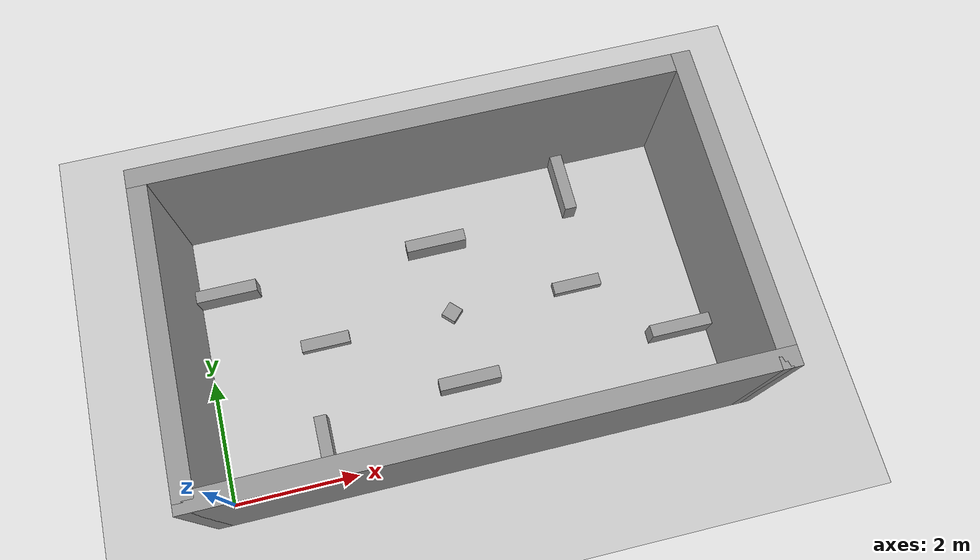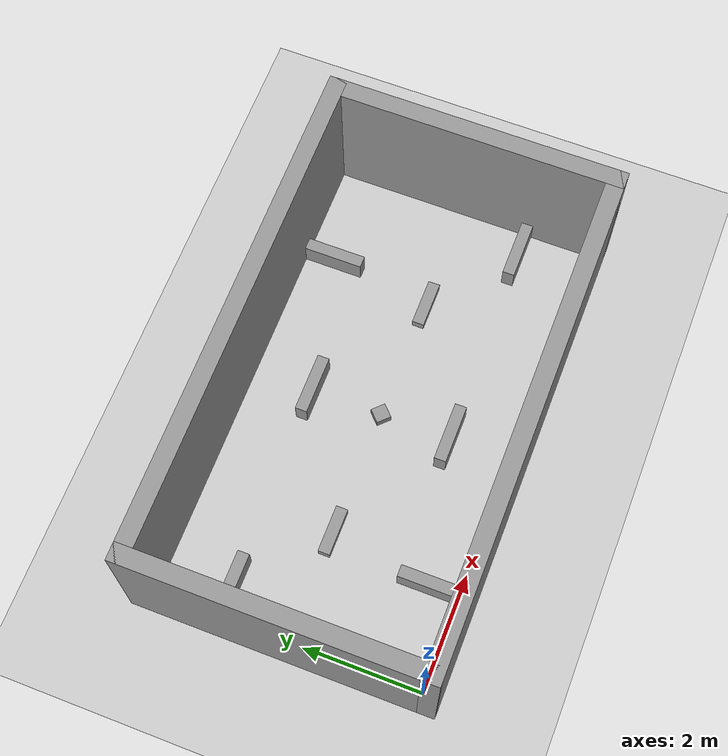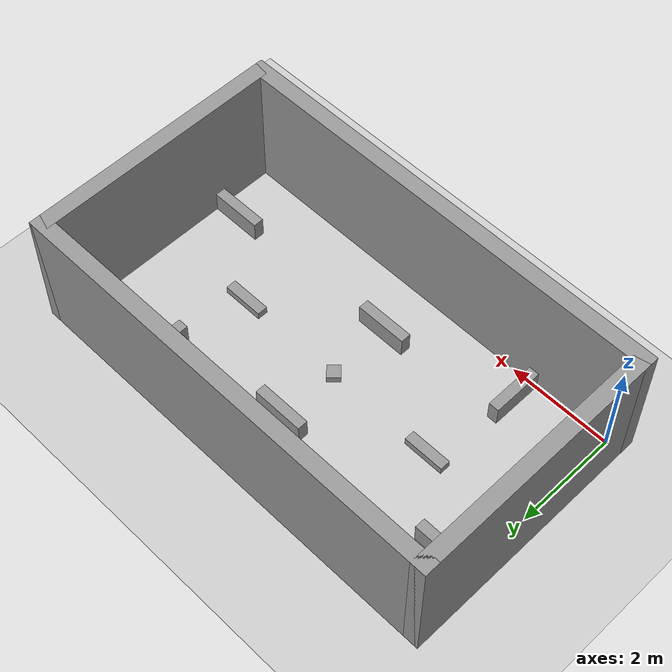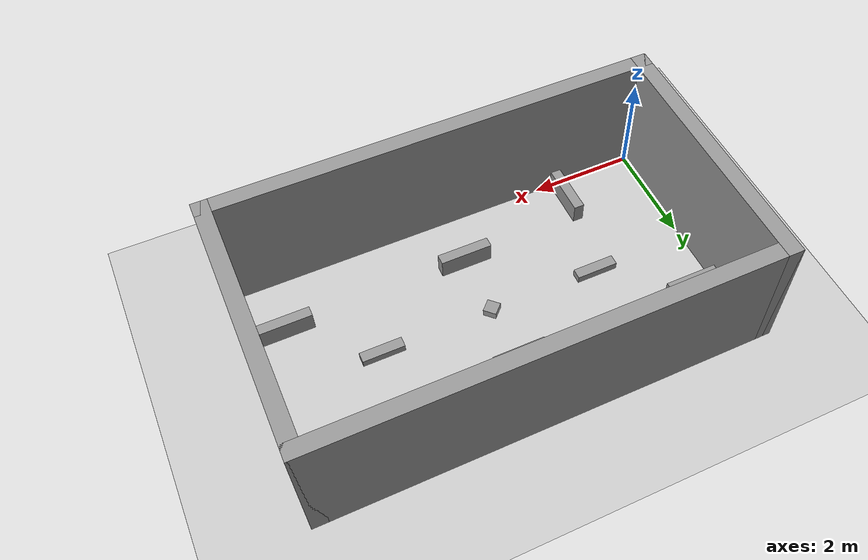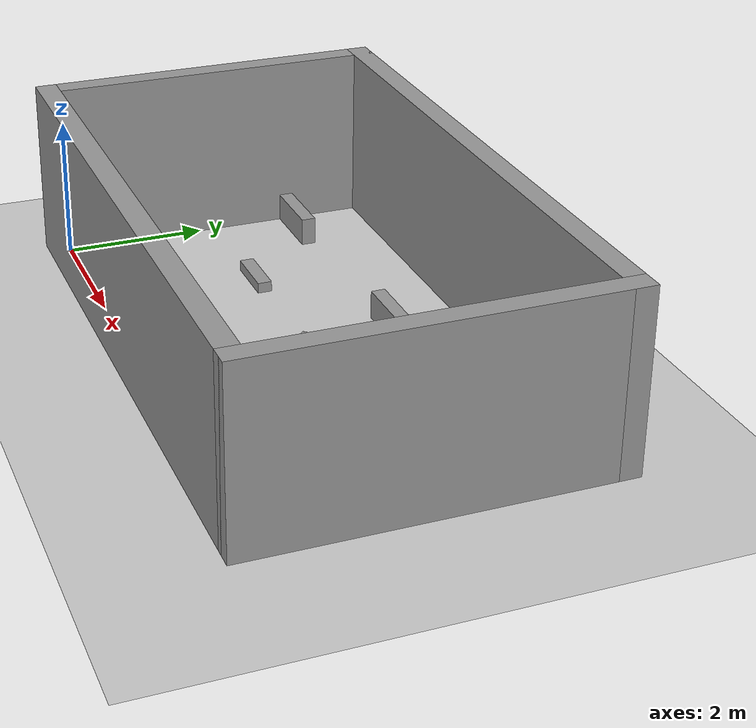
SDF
<sdf version="1.6">
 <world name="default">
  <light name="sun" type="directional">
   <pose>0 0 10 0 -0 0</pose>
   <diffuse>0.8 0.8 0.8 1</diffuse>
   <specular>0.2 0.2 0.2 1</specular>
   <attenuation>
    <range>1000</range>
    <constant>0.9</constant>
    <linear>0.01</linear>
    <quadratic>0.001</quadratic>
   </attenuation>
   <direction>-0.5 0.1 -0.9</direction>
  </light>
  <model name="ground_plane">
   <static>1</static>
   <link name="link">
    <collision name="collision">
     <geometry><plane><normal>0 0 1</normal><size>100 100</size></plane></geometry>
     <surface>
      <contact><collide_bitmask>65535</collide_bitmask></contact>
      <friction><ode><mu>100</mu><mu2>50</mu2></ode></friction>
     </surface>
    </collision>
    <visual name="visual">
     <cast_shadows>0</cast_shadows>
     <geometry><plane><normal>0 0 1</normal><size>100 100</size></plane></geometry>
     <material>
      <script><uri>file://media/materials/scripts/gazebo.material</uri><name>Gazebo/Grey</name></script>
     </material>
    </visual>
   </link>
  </model>
  <gravity>0 0 -9.8</gravity>
  <magnetic_field>6e-06 2.3e-05 -4.2e-05</magnetic_field>
  <atmosphere type="adiabatic"/>
  <physics name="default_physics" default="0" type="ode">
   <max_step_size>0.001</max_step_size>
   <real_time_factor>1</real_time_factor>
   <real_time_update_rate>1000</real_time_update_rate>
  </physics>
  <scene><ambient>0.4 0.4 0.4 1</ambient><background>0.7 0.7 0.7 1</background><shadows>1</shadows></scene>
  <audio><device>default</device></audio>
  <spherical_coordinates>
   <surface_model>EARTH_WGS84</surface_model>
   <latitude_deg>0</latitude_deg>
   <longitude_deg>0</longitude_deg>
   <elevation>0</elevation>
   <heading_deg>0</heading_deg>
  </spherical_coordinates>
  <model name="robotmaster2022">
   <pose>4.04 2.24 0 0 -0 0</pose>
   <link name="Wall_0">
    <collision name="Wall_0_Collision">
     <geometry><box><size>8.68 0.3 2.5</size></box></geometry>
     <pose>0 0 1.25 0 -0 0</pose>
    </collision>
    <visual name="Wall_0_Visual">
     <pose>0 0 1.25 0 -0 0</pose>
     <geometry><box><size>8.68 0.3 2.5</size></box></geometry>
     <material>
      <script><uri>file://media/materials/scripts/gazebo.material</uri><name>Gazebo/Grey</name></script>
      <ambient>1 1 1 1</ambient>
     </material>
     <meta><layer>0</layer></meta>
    </visual>
    <pose>0 -2.39 0 0 -0 0</pose>
   </link>
   <link name="Wall_10">
    <collision name="Wall_10_Collision">
     <geometry><box><size>1 0.2 0.4</size></box></geometry>
     <pose>0 0 0.2 0 -0 0</pose>
    </collision>
    <visual name="Wall_10_Visual">
     <pose>0 0 0.2 0 -0 0</pose>
     <geometry><box><size>1 0.2 0.4</size></box></geometry>
     <material>
      <script><uri>file://media/materials/scripts/gazebo.material</uri><name>Gazebo/Grey</name></script>
      <ambient>1 1 1 1</ambient>
     </material>
     <meta><layer>0</layer></meta>
    </visual>
    <pose>-2.44 -1.74 0 0 -0 1.5708</pose>
   </link>
   <link name="Wall_12">
    <collision name="Wall_12_Collision">
     <geometry><box><size>1 0.2 0.4</size></box></geometry>
     <pose>0 0 0.2 0 -0 0</pose>
    </collision>
    <visual name="Wall_12_Visual">
     <pose>0 0 0.2 0 -0 0</pose>
     <geometry><box><size>1 0.2 0.4</size></box></geometry>
     <material>
      <script><uri>file://media/materials/scripts/gazebo.material</uri><name>Gazebo/Grey</name></script>
      <ambient>1 1 1 1</ambient>
     </material>
     <meta><layer>0</layer></meta>
    </visual>
    <pose>-3.54 1.14 0 0 -0 0</pose>
   </link>
   <link name="Wall_2">
    <collision name="Wall_2_Collision">
     <geometry><box><size>5.08 0.3 2.5</size></box></geometry>
     <pose>0 0 1.25 0 -0 0</pose>
    </collision>
    <visual name="Wall_2_Visual">
     <pose>0 0 1.25 0 -0 0</pose>
     <geometry><box><size>5.08 0.3 2.5</size></box></geometry>
     <material>
      <script><uri>file://media/materials/scripts/gazebo.material</uri><name>Gazebo/Grey</name></script>
      <ambient>1 1 1 1</ambient>
     </material>
     <meta><layer>0</layer></meta>
    </visual>
    <pose>-4.19 0 0 0 -0 1.5708</pose>
   </link>
   <link name="Wall_21">
    <collision name="Wall_21_Collision">
     <geometry><box><size>1 0.2 0.4</size></box></geometry>
     <pose>0 0 0.2 0 -0 0</pose>
    </collision>
    <visual name="Wall_21_Visual">
     <pose>0 0 0.2 0 -0 0</pose>
     <geometry><box><size>1 0.2 0.4</size></box></geometry>
     <material>
      <script><uri>file://media/materials/scripts/gazebo.material</uri><name>Gazebo/Grey</name></script>
      <ambient>1 1 1 1</ambient>
     </material>
     <meta><layer>0</layer></meta>
    </visual>
    <pose>2.36 1.74 0 0 -0 1.5708</pose>
   </link>
   <link name="Wall_23">
    <collision name="Wall_23_Collision">
     <geometry><box><size>1 0.2 0.4</size></box></geometry>
     <pose>0 0 0.2 0 -0 0</pose>
    </collision>
    <visual name="Wall_23_Visual">
     <pose>0 0 0.2 0 -0 0</pose>
     <geometry><box><size>1 0.2 0.4</size></box></geometry>
     <material>
      <script><uri>file://media/materials/scripts/gazebo.material</uri><name>Gazebo/Grey</name></script>
      <ambient>1 1 1 1</ambient>
     </material>
     <meta><layer>0</layer></meta>
    </visual>
    <pose>3.54 -1.14 0 0 -0 0</pose>
   </link>
   <link name="Wall_25">
    <collision name="Wall_25_Collision">
     <geometry><box><size>0.8 0.2 0.15</size></box></geometry>
     <pose>0 0 0.075 0 -0 0</pose>
    </collision>
    <visual name="Wall_25_Visual">
     <pose>0 0 0.075 0 -0 0</pose>
     <geometry><box><size>0.8 0.2 0.15</size></box></geometry>
     <material>
      <script><uri>file://media/materials/scripts/gazebo.material</uri><name>Gazebo/Grey</name></script>
      <ambient>1 1 1 1</ambient>
     </material>
     <meta><layer>0</layer></meta>
    </visual>
    <pose>-2.14 0 0 0 -0 0</pose>
   </link>
   <link name="Wall_27">
    <collision name="Wall_27_Collision">
     <geometry><box><size>0.8 0.2 0.15</size></box></geometry>
     <pose>0 0 0.075 0 -0 0</pose>
    </collision>
    <visual name="Wall_27_Visual">
     <pose>0 0 0.075 0 -0 0</pose>
     <geometry><box><size>0.8 0.2 0.15</size></box></geometry>
     <material>
      <script><uri>file://media/materials/scripts/gazebo.material</uri><name>Gazebo/Grey</name></script>
      <ambient>1 1 1 1</ambient>
     </material>
     <meta><layer>0</layer></meta>
    </visual>
    <pose>2.14 0 0 0 -0 0</pose>
   </link>
   <link name="Wall_29">
    <collision name="Wall_29_Collision">
     <geometry><box><size>1 0.2 0.4</size></box></geometry>
     <pose>0 0 0.2 0 -0 0</pose>
    </collision>
    <visual name="Wall_29_Visual">
     <pose>0 0 0.2 0 -0 0</pose>
     <geometry><box><size>1 0.2 0.4</size></box></geometry>
     <material>
      <script><uri>file://media/materials/scripts/gazebo.material</uri><name>Gazebo/Grey</name></script>
      <ambient>1 1 1 1</ambient>
     </material>
     <meta><layer>0</layer></meta>
    </visual>
    <pose>0 1.205 0 0 -0 0</pose>
   </link>
   <link name="Wall_31">
    <collision name="Wall_31_Collision">
     <geometry><box><size>1 0.2 0.4</size></box></geometry>
     <pose>0 0 0.2 0 -0 0</pose>
    </collision>
    <visual name="Wall_31_Visual">
     <pose>0 0 0.2 0 -0 0</pose>
     <geometry><box><size>1 0.2 0.4</size></box></geometry>
     <material>
      <script><uri>file://media/materials/scripts/gazebo.material</uri><name>Gazebo/Grey</name></script>
      <ambient>1 1 1 1</ambient>
     </material>
     <meta><layer>0</layer></meta>
    </visual>
    <pose>0 -1.205 0 0 -0 0</pose>
   </link>
   <link name="Wall_33">
    <collision name="Wall_33_Collision">
     <geometry><box><size>0.251414 0.25 0.15</size></box></geometry>
     <pose>0 0 0.075 0 -0 0</pose>
    </collision>
    <visual name="Wall_33_Visual">
     <pose>0 0 0.075 0 -0 0</pose>
     <geometry><box><size>0.251414 0.25 0.15</size></box></geometry>
     <material>
      <script><uri>file://media/materials/scripts/gazebo.material</uri><name>Gazebo/Grey</name></script>
      <ambient>1 1 1 1</ambient>
     </material>
     <meta><layer>0</layer></meta>
    </visual>
    <pose>0.0005 0.0005 0 0 -0 0.785398</pose>
   </link>
   <link name="Wall_4">
    <collision name="Wall_4_Collision">
     <geometry><box><size>8.68 0.3 2.5</size></box></geometry>
     <pose>0 0 1.25 0 -0 0</pose>
    </collision>
    <visual name="Wall_4_Visual">
     <pose>0 0 1.25 0 -0 0</pose>
     <geometry><box><size>8.68 0.3 2.5</size></box></geometry>
     <material>
      <script><uri>file://media/materials/scripts/gazebo.material</uri><name>Gazebo/Grey</name></script>
      <ambient>1 1 1 1</ambient>
     </material>
     <meta><layer>0</layer></meta>
    </visual>
    <pose>0 2.39 0 0 -0 0</pose>
   </link>
   <link name="Wall_6">
    <collision name="Wall_6_Collision">
     <geometry><box><size>5.08 0.3 2.5</size></box></geometry>
     <pose>0 0 1.25 0 -0 0</pose>
    </collision>
    <visual name="Wall_6_Visual">
     <pose>0 0 1.25 0 -0 0</pose>
     <geometry><box><size>5.08 0.3 2.5</size></box></geometry>
     <material>
      <script><uri>file://media/materials/scripts/gazebo.material</uri><name>Gazebo/Grey</name></script>
      <ambient>1 1 1 1</ambient>
     </material>
     <meta><layer>0</layer></meta>
    </visual>
    <pose>4.19 0 0 0 -0 1.5708</pose>
   </link>
   <static>1</static>
  </model>
 </world>
</sdf>
